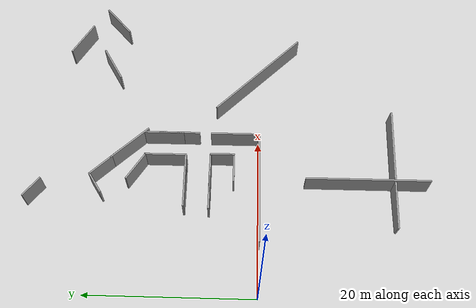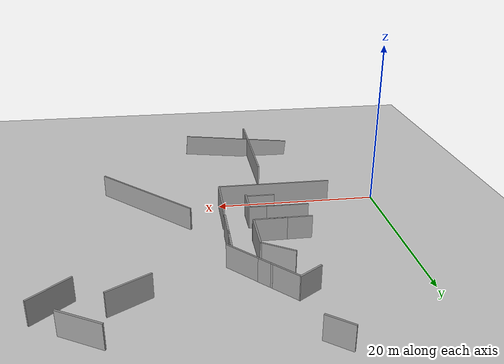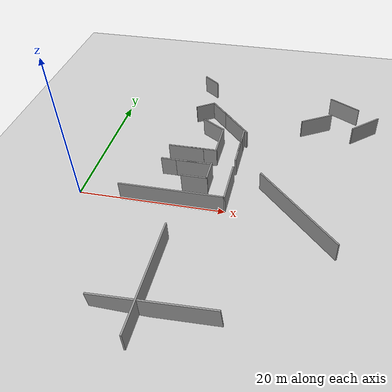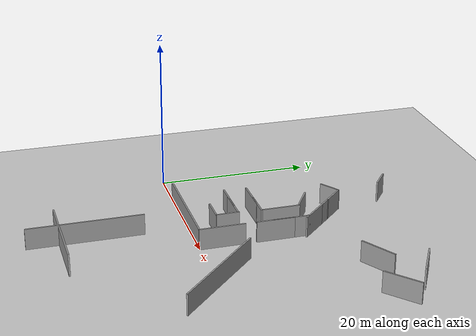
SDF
<sdf version="1.7">
 <world name="default">
  <model name="ground_plane">
   <static>1</static>
   <link name="link">
    <collision name="collision">
     <geometry><plane><normal>0 0 1</normal><size>100 100</size></plane></geometry>
     <surface>
      <contact><collide_bitmask>65535</collide_bitmask></contact>
      <friction><ode><mu>100</mu><mu2>50</mu2></ode></friction>
     </surface>
    </collision>
    <visual name="visual">
     <cast_shadows>0</cast_shadows>
     <geometry><plane><normal>0 0 1</normal><size>100 100</size></plane></geometry>
     <material>
      <script><uri>file://media/materials/scripts/gazebo.material</uri><name>Gazebo/Grey</name></script>
     </material>
    </visual>
   </link>
  </model>
  <model name="grey_wall_4">
   <link name="link">
    <pose>0 0 1.4 0 -0 0</pose>
    <inertial>
     <mass>1</mass>
     <inertia><ixx>1</ixx><ixy>0</ixy><ixz>0</ixz><iyy>1</iyy><iyz>0</iyz><izz>1</izz></inertia>
    </inertial>
    <visual name="visual">
     <cast_shadows>0</cast_shadows>
     <geometry><box><size>4 0.2 2.8</size></box></geometry>
     <material>
      <script>
       <uri>model://grey_wall/materials/scripts</uri>
       <uri>model://grey_wall/materials/textures</uri>
       <name>vrc/grey_wall</name>
      </script>
      <shader type="pixel"><normal_map>__default__</normal_map></shader>
      <ambient>1 1 1 1</ambient>
      <diffuse>1 1 1 1</diffuse>
      <specular>0 0 0 1</specular>
      <emissive>0 0 0 1</emissive>
     </material>
    </visual>
    <collision name="collision">
     <geometry><box><size>4 0.2 2.8</size></box></geometry>
     <surface>
      <friction>
       <ode><mu>1</mu><mu2>1</mu2><fdir1>0 0 0</fdir1><slip1>0</slip1><slip2>0</slip2></ode>
       <torsional>
        <coefficient>1</coefficient>
        <patch_radius>0</patch_radius>
        <surface_radius>0</surface_radius>
        <use_patch_radius>1</use_patch_radius>
        <ode><slip>0</slip></ode>
       </torsional>
      </friction>
      <bounce><restitution_coefficient>0</restitution_coefficient><threshold>1e+06</threshold></bounce>
      <contact>
       <collide_without_contact>0</collide_without_contact>
       <collide_without_contact_bitmask>1</collide_without_contact_bitmask>
       <collide_bitmask>1</collide_bitmask>
       <ode>
        <soft_cfm>0</soft_cfm>
        <soft_erp>0.2</soft_erp>
        <kp>1e+13</kp>
        <kd>1</kd>
        <max_vel>0.01</max_vel>
        <min_depth>0</min_depth>
       </ode>
       <bullet>
        <split_impulse>1</split_impulse>
        <split_impulse_penetration_threshold>-0.01</split_impulse_penetration_threshold>
        <soft_cfm>0</soft_cfm>
        <soft_erp>0.2</soft_erp>
        <kp>1e+13</kp>
        <kd>1</kd>
       </bullet>
      </contact>
     </surface>
    </collision>
   </link>
   <static>1</static>
   <pose>14.9898 8.86455 0 0 -0 0</pose>
  </model>
  <model name="grey_wall_5_clone">
   <link name="link">
    <pose>0 0 1.4 0 -0 0</pose>
    <inertial>
     <mass>1</mass>
     <inertia><ixx>1</ixx><ixy>0</ixy><ixz>0</ixz><iyy>1</iyy><iyz>0</iyz><izz>1</izz></inertia>
    </inertial>
    <visual name="visual">
     <cast_shadows>0</cast_shadows>
     <geometry><box><size>5 0.2 2.8</size></box></geometry>
     <material>
      <script>
       <uri>model://grey_wall/materials/scripts</uri>
       <uri>model://grey_wall/materials/textures</uri>
       <name>vrc/grey_wall</name>
      </script>
      <shader type="pixel"><normal_map>__default__</normal_map></shader>
      <ambient>1 1 1 1</ambient>
      <diffuse>1 1 1 1</diffuse>
      <specular>0 0 0 1</specular>
      <emissive>0 0 0 1</emissive>
     </material>
    </visual>
    <collision name="collision">
     <geometry><box><size>5 0.2 2.8</size></box></geometry>
     <surface>
      <friction>
       <ode><mu>1</mu><mu2>1</mu2><fdir1>0 0 0</fdir1><slip1>0</slip1><slip2>0</slip2></ode>
       <torsional>
        <coefficient>1</coefficient>
        <patch_radius>0</patch_radius>
        <surface_radius>0</surface_radius>
        <use_patch_radius>1</use_patch_radius>
        <ode><slip>0</slip></ode>
       </torsional>
      </friction>
      <bounce><restitution_coefficient>0</restitution_coefficient><threshold>1e+06</threshold></bounce>
      <contact>
       <collide_without_contact>0</collide_without_contact>
       <collide_without_contact_bitmask>1</collide_without_contact_bitmask>
       <collide_bitmask>1</collide_bitmask>
       <ode>
        <soft_cfm>0</soft_cfm>
        <soft_erp>0.2</soft_erp>
        <kp>1e+13</kp>
        <kd>1</kd>
        <max_vel>0.01</max_vel>
        <min_depth>0</min_depth>
       </ode>
       <bullet>
        <split_impulse>1</split_impulse>
        <split_impulse_penetration_threshold>-0.01</split_impulse_penetration_threshold>
        <soft_cfm>0</soft_cfm>
        <soft_erp>0.2</soft_erp>
        <kp>1e+13</kp>
        <kd>1</kd>
       </bullet>
      </contact>
     </surface>
    </collision>
   </link>
   <static>1</static>
   <pose>19.9534 11.7499 0 0 -0 1.57141</pose>
  </model>
  <model name="grey_wall_3.6_clone">
   <link name="link">
    <pose>0 0 1.4 0 -0 0</pose>
    <inertial>
     <mass>1</mass>
     <inertia><ixx>1</ixx><ixy>0</ixy><ixz>0</ixz><iyy>1</iyy><iyz>0</iyz><izz>1</izz></inertia>
    </inertial>
    <visual name="visual">
     <cast_shadows>0</cast_shadows>
     <geometry><box><size>3.6 0.2 2.8</size></box></geometry>
     <material>
      <script>
       <uri>model://grey_wall/materials/scripts</uri>
       <uri>model://grey_wall/materials/textures</uri>
       <name>vrc/grey_wall</name>
      </script>
      <shader type="pixel"><normal_map>__default__</normal_map></shader>
      <ambient>1 1 1 1</ambient>
      <diffuse>1 1 1 1</diffuse>
      <specular>0 0 0 1</specular>
      <emissive>0 0 0 1</emissive>
     </material>
    </visual>
    <collision name="collision">
     <geometry><box><size>3.6 0.2 2.8</size></box></geometry>
     <surface>
      <friction>
       <ode><mu>1</mu><mu2>1</mu2><fdir1>0 0 0</fdir1><slip1>0</slip1><slip2>0</slip2></ode>
       <torsional>
        <coefficient>1</coefficient>
        <patch_radius>0</patch_radius>
        <surface_radius>0</surface_radius>
        <use_patch_radius>1</use_patch_radius>
        <ode><slip>0</slip></ode>
       </torsional>
      </friction>
      <bounce><restitution_coefficient>0</restitution_coefficient><threshold>1e+06</threshold></bounce>
      <contact>
       <collide_without_contact>0</collide_without_contact>
       <collide_without_contact_bitmask>1</collide_without_contact_bitmask>
       <collide_bitmask>1</collide_bitmask>
       <ode>
        <soft_cfm>0</soft_cfm>
        <soft_erp>0.2</soft_erp>
        <kp>1e+13</kp>
        <kd>1</kd>
        <max_vel>0.01</max_vel>
        <min_depth>0</min_depth>
       </ode>
       <bullet>
        <split_impulse>1</split_impulse>
        <split_impulse_penetration_threshold>-0.01</split_impulse_penetration_threshold>
        <soft_cfm>0</soft_cfm>
        <soft_erp>0.2</soft_erp>
        <kp>1e+13</kp>
        <kd>1</kd>
       </bullet>
      </contact>
     </surface>
    </collision>
   </link>
   <static>1</static>
   <pose>15.2337 2.99966 0 0 -0 3.14101</pose>
  </model>
  <model name="grey_wall_15_clone_0_clone">
   <link name="link">
    <pose>0 0 1.4 0 -0 0</pose>
    <inertial>
     <mass>1</mass>
     <inertia><ixx>1</ixx><ixy>0</ixy><ixz>0</ixz><iyy>1</iyy><iyz>0</iyz><izz>1</izz></inertia>
    </inertial>
    <visual name="visual">
     <cast_shadows>0</cast_shadows>
     <geometry><box><size>15 0.2 2.8</size></box></geometry>
     <material>
      <script>
       <uri>model://grey_wall/materials/scripts</uri>
       <uri>model://grey_wall/materials/textures</uri>
       <name>vrc/grey_wall</name>
      </script>
      <shader type="pixel"><normal_map>__default__</normal_map></shader>
      <ambient>1 1 1 1</ambient>
      <diffuse>1 1 1 1</diffuse>
      <specular>0 0 0 1</specular>
      <emissive>0 0 0 1</emissive>
     </material>
    </visual>
    <collision name="collision">
     <geometry><box><size>15 0.2 2.8</size></box></geometry>
     <surface>
      <friction>
       <ode><mu>1</mu><mu2>1</mu2><fdir1>0 0 0</fdir1><slip1>0</slip1><slip2>0</slip2></ode>
       <torsional>
        <coefficient>1</coefficient>
        <patch_radius>0</patch_radius>
        <surface_radius>0</surface_radius>
        <use_patch_radius>1</use_patch_radius>
        <ode><slip>0</slip></ode>
       </torsional>
      </friction>
      <bounce><restitution_coefficient>0</restitution_coefficient><threshold>1e+06</threshold></bounce>
      <contact>
       <collide_without_contact>0</collide_without_contact>
       <collide_without_contact_bitmask>1</collide_without_contact_bitmask>
       <collide_bitmask>1</collide_bitmask>
       <ode>
        <soft_cfm>0</soft_cfm>
        <soft_erp>0.2</soft_erp>
        <kp>1e+13</kp>
        <kd>1</kd>
        <max_vel>0.01</max_vel>
        <min_depth>0</min_depth>
       </ode>
       <bullet>
        <split_impulse>1</split_impulse>
        <split_impulse_penetration_threshold>-0.01</split_impulse_penetration_threshold>
        <soft_cfm>0</soft_cfm>
        <soft_erp>0.2</soft_erp>
        <kp>1e+13</kp>
        <kd>1</kd>
       </bullet>
      </contact>
     </surface>
    </collision>
   </link>
   <static>1</static>
   <pose>14.0313 -13.123 0 0 -0 1.57141</pose>
  </model>
  <model name="grey_wall_5_clone_0">
   <link name="link">
    <pose>0 0 1.4 0 -0 0</pose>
    <inertial>
     <mass>1</mass>
     <inertia><ixx>1</ixx><ixy>0</ixy><ixz>0</ixz><iyy>1</iyy><iyz>0</iyz><izz>1</izz></inertia>
    </inertial>
    <visual name="visual">
     <cast_shadows>0</cast_shadows>
     <geometry><box><size>5 0.2 2.8</size></box></geometry>
     <material>
      <script>
       <uri>model://grey_wall/materials/scripts</uri>
       <uri>model://grey_wall/materials/textures</uri>
       <name>vrc/grey_wall</name>
      </script>
      <shader type="pixel"><normal_map>__default__</normal_map></shader>
      <ambient>1 1 1 1</ambient>
      <diffuse>1 1 1 1</diffuse>
      <specular>0 0 0 1</specular>
      <emissive>0 0 0 1</emissive>
     </material>
    </visual>
    <collision name="collision">
     <geometry><box><size>5 0.2 2.8</size></box></geometry>
     <surface>
      <friction>
       <ode><mu>1</mu><mu2>1</mu2><fdir1>0 0 0</fdir1><slip1>0</slip1><slip2>0</slip2></ode>
       <torsional>
        <coefficient>1</coefficient>
        <patch_radius>0</patch_radius>
        <surface_radius>0</surface_radius>
        <use_patch_radius>1</use_patch_radius>
        <ode><slip>0</slip></ode>
       </torsional>
      </friction>
      <bounce><restitution_coefficient>0</restitution_coefficient><threshold>1e+06</threshold></bounce>
      <contact>
       <collide_without_contact>0</collide_without_contact>
       <collide_without_contact_bitmask>1</collide_without_contact_bitmask>
       <collide_bitmask>1</collide_bitmask>
       <ode>
        <soft_cfm>0</soft_cfm>
        <soft_erp>0.2</soft_erp>
        <kp>1e+13</kp>
        <kd>1</kd>
        <max_vel>0.01</max_vel>
        <min_depth>0</min_depth>
       </ode>
       <bullet>
        <split_impulse>1</split_impulse>
        <split_impulse_penetration_threshold>-0.01</split_impulse_penetration_threshold>
        <soft_cfm>0</soft_cfm>
        <soft_erp>0.2</soft_erp>
        <kp>1e+13</kp>
        <kd>1</kd>
       </bullet>
      </contact>
     </surface>
    </collision>
   </link>
   <static>1</static>
   <pose>30.2296 19.1971 0 0 -0 0.529284</pose>
  </model>
  <model name="grey_wall_5_clone_1">
   <link name="link">
    <pose>0 0 1.4 0 -0 0</pose>
    <inertial>
     <mass>1</mass>
     <inertia><ixx>1</ixx><ixy>0</ixy><ixz>0</ixz><iyy>1</iyy><iyz>0</iyz><izz>1</izz></inertia>
    </inertial>
    <visual name="visual">
     <cast_shadows>0</cast_shadows>
     <geometry><box><size>5 0.2 2.8</size></box></geometry>
     <material>
      <script>
       <uri>model://grey_wall/materials/scripts</uri>
       <uri>model://grey_wall/materials/textures</uri>
       <name>vrc/grey_wall</name>
      </script>
      <shader type="pixel"><normal_map>__default__</normal_map></shader>
      <ambient>1 1 1 1</ambient>
      <diffuse>1 1 1 1</diffuse>
      <specular>0 0 0 1</specular>
      <emissive>0 0 0 1</emissive>
     </material>
    </visual>
    <collision name="collision">
     <geometry><box><size>5 0.2 2.8</size></box></geometry>
     <surface>
      <friction>
       <ode><mu>1</mu><mu2>1</mu2><fdir1>0 0 0</fdir1><slip1>0</slip1><slip2>0</slip2></ode>
       <torsional>
        <coefficient>1</coefficient>
        <patch_radius>0</patch_radius>
        <surface_radius>0</surface_radius>
        <use_patch_radius>1</use_patch_radius>
        <ode><slip>0</slip></ode>
       </torsional>
      </friction>
      <bounce><restitution_coefficient>0</restitution_coefficient><threshold>1e+06</threshold></bounce>
      <contact>
       <collide_without_contact>0</collide_without_contact>
       <collide_without_contact_bitmask>1</collide_without_contact_bitmask>
       <collide_bitmask>1</collide_bitmask>
       <ode>
        <soft_cfm>0</soft_cfm>
        <soft_erp>0.2</soft_erp>
        <kp>1e+13</kp>
        <kd>1</kd>
        <max_vel>0.01</max_vel>
        <min_depth>0</min_depth>
       </ode>
       <bullet>
        <split_impulse>1</split_impulse>
        <split_impulse_penetration_threshold>-0.01</split_impulse_penetration_threshold>
        <soft_cfm>0</soft_cfm>
        <soft_erp>0.2</soft_erp>
        <kp>1e+13</kp>
        <kd>1</kd>
       </bullet>
      </contact>
     </surface>
    </collision>
   </link>
   <static>1</static>
   <pose>34.2783 23.6671 0 0 0 -0.50895</pose>
  </model>
  <model name="grey_wall_5_clone_clone_0_clone_1">
   <link name="link">
    <pose>0 0 1.4 0 -0 0</pose>
    <inertial>
     <mass>1</mass>
     <inertia><ixx>1</ixx><ixy>0</ixy><ixz>0</ixz><iyy>1</iyy><iyz>0</iyz><izz>1</izz></inertia>
    </inertial>
    <visual name="visual">
     <cast_shadows>0</cast_shadows>
     <geometry><box><size>5 0.2 2.8</size></box></geometry>
     <material>
      <script>
       <uri>model://grey_wall/materials/scripts</uri>
       <uri>model://grey_wall/materials/textures</uri>
       <name>vrc/grey_wall</name>
      </script>
      <shader type="pixel"><normal_map>__default__</normal_map></shader>
      <ambient>1 1 1 1</ambient>
      <diffuse>1 1 1 1</diffuse>
      <specular>0 0 0 1</specular>
      <emissive>0 0 0 1</emissive>
     </material>
    </visual>
    <collision name="collision">
     <geometry><box><size>5 0.2 2.8</size></box></geometry>
     <surface>
      <friction>
       <ode><mu>1</mu><mu2>1</mu2><fdir1>0 0 0</fdir1><slip1>0</slip1><slip2>0</slip2></ode>
       <torsional>
        <coefficient>1</coefficient>
        <patch_radius>0</patch_radius>
        <surface_radius>0</surface_radius>
        <use_patch_radius>1</use_patch_radius>
        <ode><slip>0</slip></ode>
       </torsional>
      </friction>
      <bounce><restitution_coefficient>0</restitution_coefficient><threshold>1e+06</threshold></bounce>
      <contact>
       <collide_without_contact>0</collide_without_contact>
       <collide_without_contact_bitmask>1</collide_without_contact_bitmask>
       <collide_bitmask>1</collide_bitmask>
       <ode>
        <soft_cfm>0</soft_cfm>
        <soft_erp>0.2</soft_erp>
        <kp>1e+13</kp>
        <kd>1</kd>
        <max_vel>0.01</max_vel>
        <min_depth>0</min_depth>
       </ode>
       <bullet>
        <split_impulse>1</split_impulse>
        <split_impulse_penetration_threshold>-0.01</split_impulse_penetration_threshold>
        <soft_cfm>0</soft_cfm>
        <soft_erp>0.2</soft_erp>
        <kp>1e+13</kp>
        <kd>1</kd>
       </bullet>
      </contact>
     </surface>
    </collision>
   </link>
   <static>1</static>
   <pose>16.8746 11.4687 0 0 -0 1.57141</pose>
  </model>
  <model name="grey_wall_4_clone_0_clone_clone_0_clone_clone_clone_1_clone">
   <link name="link">
    <pose>0 0 1.4 0 -0 0</pose>
    <inertial>
     <mass>1</mass>
     <inertia><ixx>1</ixx><ixy>0</ixy><ixz>0</ixz><iyy>1</iyy><iyz>0</iyz><izz>1</izz></inertia>
    </inertial>
    <visual name="visual">
     <cast_shadows>0</cast_shadows>
     <geometry><box><size>4 0.2 2.8</size></box></geometry>
     <material>
      <script>
       <uri>model://grey_wall/materials/scripts</uri>
       <uri>model://grey_wall/materials/textures</uri>
       <name>vrc/grey_wall</name>
      </script>
      <shader type="pixel"><normal_map>__default__</normal_map></shader>
      <ambient>1 1 1 1</ambient>
      <diffuse>1 1 1 1</diffuse>
      <specular>0 0 0 1</specular>
      <emissive>0 0 0 1</emissive>
     </material>
    </visual>
    <collision name="collision">
     <geometry><box><size>4 0.2 2.8</size></box></geometry>
     <surface>
      <friction>
       <ode><mu>1</mu><mu2>1</mu2><fdir1>0 0 0</fdir1><slip1>0</slip1><slip2>0</slip2></ode>
       <torsional>
        <coefficient>1</coefficient>
        <patch_radius>0</patch_radius>
        <surface_radius>0</surface_radius>
        <use_patch_radius>1</use_patch_radius>
        <ode><slip>0</slip></ode>
       </torsional>
      </friction>
      <bounce><restitution_coefficient>0</restitution_coefficient><threshold>1e+06</threshold></bounce>
      <contact>
       <collide_without_contact>0</collide_without_contact>
       <collide_without_contact_bitmask>1</collide_without_contact_bitmask>
       <collide_bitmask>1</collide_bitmask>
       <ode>
        <soft_cfm>0</soft_cfm>
        <soft_erp>0.2</soft_erp>
        <kp>1e+13</kp>
        <kd>1</kd>
        <max_vel>0.01</max_vel>
        <min_depth>0</min_depth>
       </ode>
       <bullet>
        <split_impulse>1</split_impulse>
        <split_impulse_penetration_threshold>-0.01</split_impulse_penetration_threshold>
        <soft_cfm>0</soft_cfm>
        <soft_erp>0.2</soft_erp>
        <kp>1e+13</kp>
        <kd>1</kd>
       </bullet>
      </contact>
     </surface>
    </collision>
   </link>
   <static>1</static>
   <pose>15.1846 14.8427 0 0 -0 2.58708</pose>
  </model>
  <model name="grey_wall_5_clone_clone_0_clone_1_clone_clone_0">
   <link name="link">
    <pose>0 0 1.4 0 -0 0</pose>
    <inertial>
     <mass>1</mass>
     <inertia><ixx>1</ixx><ixy>0</ixy><ixz>0</ixz><iyy>1</iyy><iyz>0</iyz><izz>1</izz></inertia>
    </inertial>
    <visual name="visual">
     <cast_shadows>0</cast_shadows>
     <geometry><box><size>5 0.2 2.8</size></box></geometry>
     <material>
      <script>
       <uri>model://grey_wall/materials/scripts</uri>
       <uri>model://grey_wall/materials/textures</uri>
       <name>vrc/grey_wall</name>
      </script>
      <shader type="pixel"><normal_map>__default__</normal_map></shader>
      <ambient>1 1 1 1</ambient>
      <diffuse>1 1 1 1</diffuse>
      <specular>0 0 0 1</specular>
      <emissive>0 0 0 1</emissive>
     </material>
    </visual>
    <collision name="collision">
     <geometry><box><size>5 0.2 2.8</size></box></geometry>
     <surface>
      <friction>
       <ode><mu>1</mu><mu2>1</mu2><fdir1>0 0 0</fdir1><slip1>0</slip1><slip2>0</slip2></ode>
       <torsional>
        <coefficient>1</coefficient>
        <patch_radius>0</patch_radius>
        <surface_radius>0</surface_radius>
        <use_patch_radius>1</use_patch_radius>
        <ode><slip>0</slip></ode>
       </torsional>
      </friction>
      <bounce><restitution_coefficient>0</restitution_coefficient><threshold>1e+06</threshold></bounce>
      <contact>
       <collide_without_contact>0</collide_without_contact>
       <collide_without_contact_bitmask>1</collide_without_contact_bitmask>
       <collide_bitmask>1</collide_bitmask>
       <ode>
        <soft_cfm>0</soft_cfm>
        <soft_erp>0.2</soft_erp>
        <kp>1e+13</kp>
        <kd>1</kd>
        <max_vel>0.01</max_vel>
        <min_depth>0</min_depth>
       </ode>
       <bullet>
        <split_impulse>1</split_impulse>
        <split_impulse_penetration_threshold>-0.01</split_impulse_penetration_threshold>
        <soft_cfm>0</soft_cfm>
        <soft_erp>0.2</soft_erp>
        <kp>1e+13</kp>
        <kd>1</kd>
       </bullet>
      </contact>
     </surface>
    </collision>
   </link>
   <static>1</static>
   <pose>37.4469 19.166 0 0 -0 0.722717</pose>
  </model>
  <model name="grey_wall_6">
   <link name="link">
    <pose>0 0 1.4 0 -0 0</pose>
    <inertial>
     <mass>1</mass>
     <inertia><ixx>1</ixx><ixy>0</ixy><ixz>0</ixz><iyy>1</iyy><iyz>0</iyz><izz>1</izz></inertia>
    </inertial>
    <visual name="visual">
     <cast_shadows>0</cast_shadows>
     <geometry><box><size>6 0.2 2.8</size></box></geometry>
     <material>
      <script>
       <uri>model://grey_wall/materials/scripts</uri>
       <uri>model://grey_wall/materials/textures</uri>
       <name>vrc/grey_wall</name>
      </script>
      <shader type="pixel"><normal_map>__default__</normal_map></shader>
      <ambient>1 1 1 1</ambient>
      <diffuse>1 1 1 1</diffuse>
      <specular>0 0 0 1</specular>
      <emissive>0 0 0 1</emissive>
     </material>
    </visual>
    <collision name="collision">
     <geometry><box><size>6 0.2 2.8</size></box></geometry>
     <surface>
      <friction>
       <ode><mu>1</mu><mu2>1</mu2><fdir1>0 0 0</fdir1><slip1>0</slip1><slip2>0</slip2></ode>
       <torsional>
        <coefficient>1</coefficient>
        <patch_radius>0</patch_radius>
        <surface_radius>0</surface_radius>
        <use_patch_radius>1</use_patch_radius>
        <ode><slip>0</slip></ode>
       </torsional>
      </friction>
      <bounce><restitution_coefficient>0</restitution_coefficient><threshold>1e+06</threshold></bounce>
      <contact>
       <collide_without_contact>0</collide_without_contact>
       <collide_without_contact_bitmask>1</collide_without_contact_bitmask>
       <collide_bitmask>1</collide_bitmask>
       <ode>
        <soft_cfm>0</soft_cfm>
        <soft_erp>0.2</soft_erp>
        <kp>1e+13</kp>
        <kd>1</kd>
        <max_vel>0.01</max_vel>
        <min_depth>0</min_depth>
       </ode>
       <bullet>
        <split_impulse>1</split_impulse>
        <split_impulse_penetration_threshold>-0.01</split_impulse_penetration_threshold>
        <soft_cfm>0</soft_cfm>
        <soft_erp>0.2</soft_erp>
        <kp>1e+13</kp>
        <kd>1</kd>
       </bullet>
      </contact>
     </surface>
    </collision>
   </link>
   <static>1</static>
   <pose>18.3746 15.8446 0 0 -0 2.33668</pose>
  </model>
  <model name="grey_wall_15_clone_0_clone_0">
   <link name="link">
    <pose>0 0 1.4 0 -0 0</pose>
    <inertial>
     <mass>1</mass>
     <inertia><ixx>1</ixx><ixy>0</ixy><ixz>0</ixz><iyy>1</iyy><iyz>0</iyz><izz>1</izz></inertia>
    </inertial>
    <visual name="visual">
     <cast_shadows>0</cast_shadows>
     <geometry><box><size>15 0.2 2.8</size></box></geometry>
     <material>
      <script>
       <uri>model://grey_wall/materials/scripts</uri>
       <uri>model://grey_wall/materials/textures</uri>
       <name>vrc/grey_wall</name>
      </script>
      <shader type="pixel"><normal_map>__default__</normal_map></shader>
      <ambient>1 1 1 1</ambient>
      <diffuse>1 1 1 1</diffuse>
      <specular>0 0 0 1</specular>
      <emissive>0 0 0 1</emissive>
     </material>
    </visual>
    <collision name="collision">
     <geometry><box><size>15 0.2 2.8</size></box></geometry>
     <surface>
      <friction>
       <ode><mu>1</mu><mu2>1</mu2><fdir1>0 0 0</fdir1><slip1>0</slip1><slip2>0</slip2></ode>
       <torsional>
        <coefficient>1</coefficient>
        <patch_radius>0</patch_radius>
        <surface_radius>0</surface_radius>
        <use_patch_radius>1</use_patch_radius>
        <ode><slip>0</slip></ode>
       </torsional>
      </friction>
      <bounce><restitution_coefficient>0</restitution_coefficient><threshold>1e+06</threshold></bounce>
      <contact>
       <collide_without_contact>0</collide_without_contact>
       <collide_without_contact_bitmask>1</collide_without_contact_bitmask>
       <collide_bitmask>1</collide_bitmask>
       <ode>
        <soft_cfm>0</soft_cfm>
        <soft_erp>0.2</soft_erp>
        <kp>1e+13</kp>
        <kd>1</kd>
        <max_vel>0.01</max_vel>
        <min_depth>0</min_depth>
       </ode>
       <bullet>
        <split_impulse>1</split_impulse>
        <split_impulse_penetration_threshold>-0.01</split_impulse_penetration_threshold>
        <soft_cfm>0</soft_cfm>
        <soft_erp>0.2</soft_erp>
        <kp>1e+13</kp>
        <kd>1</kd>
       </bullet>
      </contact>
     </surface>
    </collision>
   </link>
   <static>1</static>
   <pose>15.8731 -16.4109 1e-06 -0.001637 0.091678 3.12433</pose>
  </model>
  <model name="grey_wall_6_clone_clone_clone_clone_0">
   <link name="link">
    <pose>0 0 1.4 0 -0 0</pose>
    <inertial>
     <mass>1</mass>
     <inertia><ixx>1</ixx><ixy>0</ixy><ixz>0</ixz><iyy>1</iyy><iyz>0</iyz><izz>1</izz></inertia>
    </inertial>
    <visual name="visual">
     <cast_shadows>0</cast_shadows>
     <geometry><box><size>6 0.2 2.8</size></box></geometry>
     <material>
      <script>
       <uri>model://grey_wall/materials/scripts</uri>
       <uri>model://grey_wall/materials/textures</uri>
       <name>vrc/grey_wall</name>
      </script>
      <shader type="pixel"><normal_map>__default__</normal_map></shader>
      <ambient>1 1 1 1</ambient>
      <diffuse>1 1 1 1</diffuse>
      <specular>0 0 0 1</specular>
      <emissive>0 0 0 1</emissive>
     </material>
    </visual>
    <collision name="collision">
     <geometry><box><size>6 0.2 2.8</size></box></geometry>
     <surface>
      <friction>
       <ode><mu>1</mu><mu2>1</mu2><fdir1>0 0 0</fdir1><slip1>0</slip1><slip2>0</slip2></ode>
       <torsional>
        <coefficient>1</coefficient>
        <patch_radius>0</patch_radius>
        <surface_radius>0</surface_radius>
        <use_patch_radius>1</use_patch_radius>
        <ode><slip>0</slip></ode>
       </torsional>
      </friction>
      <bounce><restitution_coefficient>0</restitution_coefficient><threshold>1e+06</threshold></bounce>
      <contact>
       <collide_without_contact>0</collide_without_contact>
       <collide_without_contact_bitmask>1</collide_without_contact_bitmask>
       <collide_bitmask>1</collide_bitmask>
       <ode>
        <soft_cfm>0</soft_cfm>
        <soft_erp>0.2</soft_erp>
        <kp>1e+13</kp>
        <kd>1</kd>
        <max_vel>0.01</max_vel>
        <min_depth>0</min_depth>
       </ode>
       <bullet>
        <split_impulse>1</split_impulse>
        <split_impulse_penetration_threshold>-0.01</split_impulse_penetration_threshold>
        <soft_cfm>0</soft_cfm>
        <soft_erp>0.2</soft_erp>
        <kp>1e+13</kp>
        <kd>1</kd>
       </bullet>
      </contact>
     </surface>
    </collision>
   </link>
   <static>1</static>
   <pose>19.935 2.89604 0 0 -0 1.57141</pose>
  </model>
  <model name="grey_wall_3_clone_clone_clone">
   <link name="link">
    <pose>0 0 1.4 0 -0 0</pose>
    <inertial>
     <mass>1</mass>
     <inertia><ixx>1</ixx><ixy>0</ixy><ixz>0</ixz><iyy>1</iyy><iyz>0</iyz><izz>1</izz></inertia>
    </inertial>
    <visual name="visual">
     <cast_shadows>0</cast_shadows>
     <geometry><box><size>3 0.2 2.8</size></box></geometry>
     <material>
      <script>
       <uri>model://grey_wall/materials/scripts</uri>
       <uri>model://grey_wall/materials/textures</uri>
       <name>vrc/grey_wall</name>
      </script>
      <shader type="pixel"><normal_map>__default__</normal_map></shader>
      <ambient>1 1 1 1</ambient>
      <diffuse>1 1 1 1</diffuse>
      <specular>0 0 0 1</specular>
      <emissive>0 0 0 1</emissive>
     </material>
    </visual>
    <collision name="collision">
     <geometry><box><size>2.96 0.2 2.8</size></box></geometry>
     <surface>
      <friction>
       <ode><mu>1</mu><mu2>1</mu2><fdir1>0 0 0</fdir1><slip1>0</slip1><slip2>0</slip2></ode>
       <torsional>
        <coefficient>1</coefficient>
        <patch_radius>0</patch_radius>
        <surface_radius>0</surface_radius>
        <use_patch_radius>1</use_patch_radius>
        <ode><slip>0</slip></ode>
       </torsional>
      </friction>
      <bounce><restitution_coefficient>0</restitution_coefficient><threshold>1e+06</threshold></bounce>
      <contact>
       <collide_without_contact>0</collide_without_contact>
       <collide_without_contact_bitmask>1</collide_without_contact_bitmask>
       <collide_bitmask>1</collide_bitmask>
       <ode>
        <soft_cfm>0</soft_cfm>
        <soft_erp>0.2</soft_erp>
        <kp>1e+13</kp>
        <kd>1</kd>
        <max_vel>0.01</max_vel>
        <min_depth>0</min_depth>
       </ode>
       <bullet>
        <split_impulse>1</split_impulse>
        <split_impulse_penetration_threshold>-0.01</split_impulse_penetration_threshold>
        <soft_cfm>0</soft_cfm>
        <soft_erp>0.2</soft_erp>
        <kp>1e+13</kp>
        <kd>1</kd>
       </bullet>
      </contact>
     </surface>
    </collision>
   </link>
   <static>1</static>
   <pose>12.8768 19.5388 0 0 -0 0.580341</pose>
  </model>
  <model name="grey_wall_15_clone_0_clone_clone_clone_0">
   <link name="link">
    <pose>0 0 1.4 0 -0 0</pose>
    <inertial>
     <mass>1</mass>
     <inertia><ixx>1</ixx><ixy>0</ixy><ixz>0</ixz><iyy>1</iyy><iyz>0</iyz><izz>1</izz></inertia>
    </inertial>
    <visual name="visual">
     <cast_shadows>0</cast_shadows>
     <geometry><box><size>15 0.2 2.8</size></box></geometry>
     <material>
      <script>
       <uri>model://grey_wall/materials/scripts</uri>
       <uri>model://grey_wall/materials/textures</uri>
       <name>vrc/grey_wall</name>
      </script>
      <shader type="pixel"><normal_map>__default__</normal_map></shader>
      <ambient>1 1 1 1</ambient>
      <diffuse>1 1 1 1</diffuse>
      <specular>0 0 0 1</specular>
      <emissive>0 0 0 1</emissive>
     </material>
    </visual>
    <collision name="collision">
     <geometry><box><size>15 0.2 2.8</size></box></geometry>
     <surface>
      <friction>
       <ode><mu>1</mu><mu2>1</mu2><fdir1>0 0 0</fdir1><slip1>0</slip1><slip2>0</slip2></ode>
       <torsional>
        <coefficient>1</coefficient>
        <patch_radius>0</patch_radius>
        <surface_radius>0</surface_radius>
        <use_patch_radius>1</use_patch_radius>
        <ode><slip>0</slip></ode>
       </torsional>
      </friction>
      <bounce><restitution_coefficient>0</restitution_coefficient><threshold>1e+06</threshold></bounce>
      <contact>
       <collide_without_contact>0</collide_without_contact>
       <collide_without_contact_bitmask>1</collide_without_contact_bitmask>
       <collide_bitmask>1</collide_bitmask>
       <ode>
        <soft_cfm>0</soft_cfm>
        <soft_erp>0.2</soft_erp>
        <kp>1e+13</kp>
        <kd>1</kd>
        <max_vel>0.01</max_vel>
        <min_depth>0</min_depth>
       </ode>
       <bullet>
        <split_impulse>1</split_impulse>
        <split_impulse_penetration_threshold>-0.01</split_impulse_penetration_threshold>
        <soft_cfm>0</soft_cfm>
        <soft_erp>0.2</soft_erp>
        <kp>1e+13</kp>
        <kd>1</kd>
       </bullet>
      </contact>
     </surface>
    </collision>
   </link>
   <static>1</static>
   <pose>29.0765 0.048129 -0 0 0 -0.778214</pose>
  </model>
  <model name="grey_wall_5_clone_2_clone_clone">
   <link name="link">
    <pose>0 0 1.4 0 -0 0</pose>
    <inertial>
     <mass>1</mass>
     <inertia><ixx>1</ixx><ixy>0</ixy><ixz>0</ixz><iyy>1</iyy><iyz>0</iyz><izz>1</izz></inertia>
    </inertial>
    <visual name="visual">
     <cast_shadows>0</cast_shadows>
     <geometry><box><size>5 0.2 2.8</size></box></geometry>
     <material>
      <script>
       <uri>model://grey_wall/materials/scripts</uri>
       <uri>model://grey_wall/materials/textures</uri>
       <name>vrc/grey_wall</name>
      </script>
      <shader type="pixel"><normal_map>__default__</normal_map></shader>
      <ambient>1 1 1 1</ambient>
      <diffuse>1 1 1 1</diffuse>
      <specular>0 0 0 1</specular>
      <emissive>0 0 0 1</emissive>
     </material>
    </visual>
    <collision name="collision">
     <geometry><box><size>5 0.2 2.8</size></box></geometry>
     <surface>
      <friction>
       <ode><mu>1</mu><mu2>1</mu2><fdir1>0 0 0</fdir1><slip1>0</slip1><slip2>0</slip2></ode>
       <torsional>
        <coefficient>1</coefficient>
        <patch_radius>0</patch_radius>
        <surface_radius>0</surface_radius>
        <use_patch_radius>1</use_patch_radius>
        <ode><slip>0</slip></ode>
       </torsional>
      </friction>
      <bounce><restitution_coefficient>0</restitution_coefficient><threshold>1e+06</threshold></bounce>
      <contact>
       <collide_without_contact>0</collide_without_contact>
       <collide_without_contact_bitmask>1</collide_without_contact_bitmask>
       <collide_bitmask>1</collide_bitmask>
       <ode>
        <soft_cfm>0</soft_cfm>
        <soft_erp>0.2</soft_erp>
        <kp>1e+13</kp>
        <kd>1</kd>
        <max_vel>0.01</max_vel>
        <min_depth>0</min_depth>
       </ode>
       <bullet>
        <split_impulse>1</split_impulse>
        <split_impulse_penetration_threshold>-0.01</split_impulse_penetration_threshold>
        <soft_cfm>0</soft_cfm>
        <soft_erp>0.2</soft_erp>
        <kp>1e+13</kp>
        <kd>1</kd>
       </bullet>
      </contact>
     </surface>
    </collision>
   </link>
   <static>1</static>
   <pose>12.3687 5.87072 0 0 0 -0.000612</pose>
  </model>
  <model name="grey_wall_5_clone_2_clone_clone_clone">
   <link name="link">
    <pose>0 0 1.4 0 -0 0</pose>
    <inertial>
     <mass>1</mass>
     <inertia><ixx>1</ixx><ixy>0</ixy><ixz>0</ixz><iyy>1</iyy><iyz>0</iyz><izz>1</izz></inertia>
    </inertial>
    <visual name="visual">
     <cast_shadows>0</cast_shadows>
     <geometry><box><size>5 0.2 2.8</size></box></geometry>
     <material>
      <script>
       <uri>model://grey_wall/materials/scripts</uri>
       <uri>model://grey_wall/materials/textures</uri>
       <name>vrc/grey_wall</name>
      </script>
      <shader type="pixel"><normal_map>__default__</normal_map></shader>
      <ambient>1 1 1 1</ambient>
      <diffuse>1 1 1 1</diffuse>
      <specular>0 0 0 1</specular>
      <emissive>0 0 0 1</emissive>
     </material>
    </visual>
    <collision name="collision">
     <geometry><box><size>5 0.2 2.8</size></box></geometry>
     <surface>
      <friction>
       <ode><mu>1</mu><mu2>1</mu2><fdir1>0 0 0</fdir1><slip1>0</slip1><slip2>0</slip2></ode>
       <torsional>
        <coefficient>1</coefficient>
        <patch_radius>0</patch_radius>
        <surface_radius>0</surface_radius>
        <use_patch_radius>1</use_patch_radius>
        <ode><slip>0</slip></ode>
       </torsional>
      </friction>
      <bounce><restitution_coefficient>0</restitution_coefficient><threshold>1e+06</threshold></bounce>
      <contact>
       <collide_without_contact>0</collide_without_contact>
       <collide_without_contact_bitmask>1</collide_without_contact_bitmask>
       <collide_bitmask>1</collide_bitmask>
       <ode>
        <soft_cfm>0</soft_cfm>
        <soft_erp>0.2</soft_erp>
        <kp>1e+13</kp>
        <kd>1</kd>
        <max_vel>0.01</max_vel>
        <min_depth>0</min_depth>
       </ode>
       <bullet>
        <split_impulse>1</split_impulse>
        <split_impulse_penetration_threshold>-0.01</split_impulse_penetration_threshold>
        <soft_cfm>0</soft_cfm>
        <soft_erp>0.2</soft_erp>
        <kp>1e+13</kp>
        <kd>1</kd>
       </bullet>
      </contact>
     </surface>
    </collision>
   </link>
   <static>1</static>
   <pose>14.4656 5.85225 0 0 0 -0.000612</pose>
  </model>
  <model name="grey_wall_5_clone_2_clone_clone_clone_0">
   <link name="link">
    <pose>0 0 1.4 0 -0 0</pose>
    <inertial>
     <mass>1</mass>
     <inertia><ixx>1</ixx><ixy>0</ixy><ixz>0</ixz><iyy>1</iyy><iyz>0</iyz><izz>1</izz></inertia>
    </inertial>
    <visual name="visual">
     <cast_shadows>0</cast_shadows>
     <geometry><box><size>5 0.2 2.8</size></box></geometry>
     <material>
      <script>
       <uri>model://grey_wall/materials/scripts</uri>
       <uri>model://grey_wall/materials/textures</uri>
       <name>vrc/grey_wall</name>
      </script>
      <shader type="pixel"><normal_map>__default__</normal_map></shader>
      <ambient>1 1 1 1</ambient>
      <diffuse>1 1 1 1</diffuse>
      <specular>0 0 0 1</specular>
      <emissive>0 0 0 1</emissive>
     </material>
    </visual>
    <collision name="collision">
     <geometry><box><size>5 0.2 2.8</size></box></geometry>
     <surface>
      <friction>
       <ode><mu>1</mu><mu2>1</mu2><fdir1>0 0 0</fdir1><slip1>0</slip1><slip2>0</slip2></ode>
       <torsional>
        <coefficient>1</coefficient>
        <patch_radius>0</patch_radius>
        <surface_radius>0</surface_radius>
        <use_patch_radius>1</use_patch_radius>
        <ode><slip>0</slip></ode>
       </torsional>
      </friction>
      <bounce><restitution_coefficient>0</restitution_coefficient><threshold>1e+06</threshold></bounce>
      <contact>
       <collide_without_contact>0</collide_without_contact>
       <collide_without_contact_bitmask>1</collide_without_contact_bitmask>
       <collide_bitmask>1</collide_bitmask>
       <ode>
        <soft_cfm>0</soft_cfm>
        <soft_erp>0.2</soft_erp>
        <kp>1e+13</kp>
        <kd>1</kd>
        <max_vel>0.01</max_vel>
        <min_depth>0</min_depth>
       </ode>
       <bullet>
        <split_impulse>1</split_impulse>
        <split_impulse_penetration_threshold>-0.01</split_impulse_penetration_threshold>
        <soft_cfm>0</soft_cfm>
        <soft_erp>0.2</soft_erp>
        <kp>1e+13</kp>
        <kd>1</kd>
       </bullet>
      </contact>
     </surface>
    </collision>
   </link>
   <static>1</static>
   <pose>12.5874 8.84866 0 0 0 -0.000612</pose>
  </model>
  <model name="grey_wall_5_clone_2_clone_clone_clone_clone">
   <link name="link">
    <pose>0 0 1.4 0 -0 0</pose>
    <inertial>
     <mass>1</mass>
     <inertia><ixx>1</ixx><ixy>0</ixy><ixz>0</ixz><iyy>1</iyy><iyz>0</iyz><izz>1</izz></inertia>
    </inertial>
    <visual name="visual">
     <cast_shadows>0</cast_shadows>
     <geometry><box><size>5 0.2 2.8</size></box></geometry>
     <material>
      <script>
       <uri>model://grey_wall/materials/scripts</uri>
       <uri>model://grey_wall/materials/textures</uri>
       <name>vrc/grey_wall</name>
      </script>
      <shader type="pixel"><normal_map>__default__</normal_map></shader>
      <ambient>1 1 1 1</ambient>
      <diffuse>1 1 1 1</diffuse>
      <specular>0 0 0 1</specular>
      <emissive>0 0 0 1</emissive>
     </material>
    </visual>
    <collision name="collision">
     <geometry><box><size>5 0.2 2.8</size></box></geometry>
     <surface>
      <friction>
       <ode><mu>1</mu><mu2>1</mu2><fdir1>0 0 0</fdir1><slip1>0</slip1><slip2>0</slip2></ode>
       <torsional>
        <coefficient>1</coefficient>
        <patch_radius>0</patch_radius>
        <surface_radius>0</surface_radius>
        <use_patch_radius>1</use_patch_radius>
        <ode><slip>0</slip></ode>
       </torsional>
      </friction>
      <bounce><restitution_coefficient>0</restitution_coefficient><threshold>1e+06</threshold></bounce>
      <contact>
       <collide_without_contact>0</collide_without_contact>
       <collide_without_contact_bitmask>1</collide_without_contact_bitmask>
       <collide_bitmask>1</collide_bitmask>
       <ode>
        <soft_cfm>0</soft_cfm>
        <soft_erp>0.2</soft_erp>
        <kp>1e+13</kp>
        <kd>1</kd>
        <max_vel>0.01</max_vel>
        <min_depth>0</min_depth>
       </ode>
       <bullet>
        <split_impulse>1</split_impulse>
        <split_impulse_penetration_threshold>-0.01</split_impulse_penetration_threshold>
        <soft_cfm>0</soft_cfm>
        <soft_erp>0.2</soft_erp>
        <kp>1e+13</kp>
        <kd>1</kd>
       </bullet>
      </contact>
     </surface>
    </collision>
   </link>
   <static>1</static>
   <pose>15.8155 18.4939 0 0 0 -0.796156</pose>
  </model>
  <model name="grey_wall_15_clone_0_clone_clone_clone">
   <link name="link">
    <pose>0 0 1.4 0 -0 0</pose>
    <inertial>
     <mass>1</mass>
     <inertia><ixx>1</ixx><ixy>0</ixy><ixz>0</ixz><iyy>1</iyy><iyz>0</iyz><izz>1</izz></inertia>
    </inertial>
    <visual name="visual">
     <cast_shadows>0</cast_shadows>
     <geometry><box><size>14 0.2 2.8</size></box></geometry>
     <material>
      <script>
       <uri>model://grey_wall/materials/scripts</uri>
       <uri>model://grey_wall/materials/textures</uri>
       <name>vrc/grey_wall</name>
      </script>
      <shader type="pixel"><normal_map>__default__</normal_map></shader>
      <ambient>1 1 1 1</ambient>
      <diffuse>1 1 1 1</diffuse>
      <specular>0 0 0 1</specular>
      <emissive>0 0 0 1</emissive>
     </material>
    </visual>
    <collision name="collision">
     <geometry><box><size>14 0.2 2.8</size></box></geometry>
     <surface>
      <friction>
       <ode><mu>1</mu><mu2>1</mu2><fdir1>0 0 0</fdir1><slip1>0</slip1><slip2>0</slip2></ode>
       <torsional>
        <coefficient>1</coefficient>
        <patch_radius>0</patch_radius>
        <surface_radius>0</surface_radius>
        <use_patch_radius>1</use_patch_radius>
        <ode><slip>0</slip></ode>
       </torsional>
      </friction>
      <bounce><restitution_coefficient>0</restitution_coefficient><threshold>1e+06</threshold></bounce>
      <contact>
       <collide_without_contact>0</collide_without_contact>
       <collide_without_contact_bitmask>1</collide_without_contact_bitmask>
       <collide_bitmask>1</collide_bitmask>
       <ode>
        <soft_cfm>0</soft_cfm>
        <soft_erp>0.2</soft_erp>
        <kp>1e+13</kp>
        <kd>1</kd>
        <max_vel>0.01</max_vel>
        <min_depth>0</min_depth>
       </ode>
       <bullet>
        <split_impulse>1</split_impulse>
        <split_impulse_penetration_threshold>-0.01</split_impulse_penetration_threshold>
        <soft_cfm>0</soft_cfm>
        <soft_erp>0.2</soft_erp>
        <kp>1e+13</kp>
        <kd>1</kd>
       </bullet>
      </contact>
     </surface>
    </collision>
   </link>
   <static>1</static>
   <pose>12.8598 -0.062177 0 0 -0 0.001488</pose>
  </model>
  <model name="grey_wall_5_clone_clone_0_clone_1_clone_clone">
   <link name="link">
    <pose>0 0 1.4 0 -0 0</pose>
    <inertial>
     <mass>1</mass>
     <inertia><ixx>1</ixx><ixy>0</ixy><ixz>0</ixz><iyy>1</iyy><iyz>0</iyz><izz>1</izz></inertia>
    </inertial>
    <visual name="visual">
     <cast_shadows>0</cast_shadows>
     <geometry><box><size>3 0.2 2.8</size></box></geometry>
     <material>
      <script>
       <uri>model://grey_wall/materials/scripts</uri>
       <uri>model://grey_wall/materials/textures</uri>
       <name>vrc/grey_wall</name>
      </script>
      <shader type="pixel"><normal_map>__default__</normal_map></shader>
      <ambient>1 1 1 1</ambient>
      <diffuse>1 1 1 1</diffuse>
      <specular>0 0 0 1</specular>
      <emissive>0 0 0 1</emissive>
     </material>
    </visual>
    <collision name="collision">
     <geometry><box><size>3 0.2 2.8</size></box></geometry>
     <surface>
      <friction>
       <ode><mu>1</mu><mu2>1</mu2><fdir1>0 0 0</fdir1><slip1>0</slip1><slip2>0</slip2></ode>
       <torsional>
        <coefficient>1</coefficient>
        <patch_radius>0</patch_radius>
        <surface_radius>0</surface_radius>
        <use_patch_radius>1</use_patch_radius>
        <ode><slip>0</slip></ode>
       </torsional>
      </friction>
      <bounce><restitution_coefficient>0</restitution_coefficient><threshold>1e+06</threshold></bounce>
      <contact>
       <collide_without_contact>0</collide_without_contact>
       <collide_without_contact_bitmask>1</collide_without_contact_bitmask>
       <collide_bitmask>1</collide_bitmask>
       <ode>
        <soft_cfm>0</soft_cfm>
        <soft_erp>0.2</soft_erp>
        <kp>1e+13</kp>
        <kd>1</kd>
        <max_vel>0.01</max_vel>
        <min_depth>0</min_depth>
       </ode>
       <bullet>
        <split_impulse>1</split_impulse>
        <split_impulse_penetration_threshold>-0.01</split_impulse_penetration_threshold>
        <soft_cfm>0</soft_cfm>
        <soft_erp>0.2</soft_erp>
        <kp>1e+13</kp>
        <kd>1</kd>
       </bullet>
      </contact>
     </surface>
    </collision>
   </link>
   <static>1</static>
   <pose>12.1499 27.006 0 0 0 -0.648953</pose>
  </model>
  <model name="grey_wall_2_clone">
   <link name="link">
    <pose>0 0 1.4 0 -0 0</pose>
    <inertial>
     <mass>1</mass>
     <inertia><ixx>1</ixx><ixy>0</ixy><ixz>0</ixz><iyy>1</iyy><iyz>0</iyz><izz>1</izz></inertia>
    </inertial>
    <visual name="visual">
     <cast_shadows>0</cast_shadows>
     <geometry><box><size>3 0.2 2.8</size></box></geometry>
     <material>
      <script>
       <uri>model://grey_wall/materials/scripts</uri>
       <uri>model://grey_wall/materials/textures</uri>
       <name>vrc/grey_wall</name>
      </script>
      <shader type="pixel"><normal_map>__default__</normal_map></shader>
      <ambient>1 1 1 1</ambient>
      <diffuse>1 1 1 1</diffuse>
      <specular>0 0 0 1</specular>
      <emissive>0 0 0 1</emissive>
     </material>
    </visual>
    <collision name="collision">
     <geometry><box><size>3 0.2 2.8</size></box></geometry>
     <surface>
      <friction>
       <ode><mu>1</mu><mu2>1</mu2><fdir1>0 0 0</fdir1><slip1>0</slip1><slip2>0</slip2></ode>
       <torsional>
        <coefficient>1</coefficient>
        <patch_radius>0</patch_radius>
        <surface_radius>0</surface_radius>
        <use_patch_radius>1</use_patch_radius>
        <ode><slip>0</slip></ode>
       </torsional>
      </friction>
      <bounce><restitution_coefficient>0</restitution_coefficient><threshold>1e+06</threshold></bounce>
      <contact>
       <collide_without_contact>0</collide_without_contact>
       <collide_without_contact_bitmask>1</collide_without_contact_bitmask>
       <collide_bitmask>1</collide_bitmask>
       <ode>
        <soft_cfm>0</soft_cfm>
        <soft_erp>0.2</soft_erp>
        <kp>1e+13</kp>
        <kd>1</kd>
        <max_vel>0.01</max_vel>
        <min_depth>0</min_depth>
       </ode>
       <bullet>
        <split_impulse>1</split_impulse>
        <split_impulse_penetration_threshold>-0.01</split_impulse_penetration_threshold>
        <soft_cfm>0</soft_cfm>
        <soft_erp>0.2</soft_erp>
        <kp>1e+13</kp>
        <kd>1</kd>
       </bullet>
      </contact>
     </surface>
    </collision>
   </link>
   <static>1</static>
   <pose>16.9557 4.42322 0.16865 0 0 -1.56489</pose>
  </model>
  <model name="grey_wall_5_clone_clone_0">
   <link name="link">
    <pose>0 0 1.4 0 -0 0</pose>
    <inertial>
     <mass>1</mass>
     <inertia><ixx>1</ixx><ixy>0</ixy><ixz>0</ixz><iyy>1</iyy><iyz>0</iyz><izz>1</izz></inertia>
    </inertial>
    <visual name="visual">
     <cast_shadows>0</cast_shadows>
     <geometry><box><size>5 0.2 2.8</size></box></geometry>
     <material>
      <script>
       <uri>model://grey_wall/materials/scripts</uri>
       <uri>model://grey_wall/materials/textures</uri>
       <name>vrc/grey_wall</name>
      </script>
      <shader type="pixel"><normal_map>__default__</normal_map></shader>
      <ambient>1 1 1 1</ambient>
      <diffuse>1 1 1 1</diffuse>
      <specular>0 0 0 1</specular>
      <emissive>0 0 0 1</emissive>
     </material>
    </visual>
    <collision name="collision">
     <geometry><box><size>5 0.2 2.8</size></box></geometry>
     <surface>
      <friction>
       <ode><mu>1</mu><mu2>1</mu2><fdir1>0 0 0</fdir1><slip1>0</slip1><slip2>0</slip2></ode>
       <torsional>
        <coefficient>1</coefficient>
        <patch_radius>0</patch_radius>
        <surface_radius>0</surface_radius>
        <use_patch_radius>1</use_patch_radius>
        <ode><slip>0</slip></ode>
       </torsional>
      </friction>
      <bounce><restitution_coefficient>0</restitution_coefficient><threshold>1e+06</threshold></bounce>
      <contact>
       <collide_without_contact>0</collide_without_contact>
       <collide_without_contact_bitmask>1</collide_without_contact_bitmask>
       <collide_bitmask>1</collide_bitmask>
       <ode>
        <soft_cfm>0</soft_cfm>
        <soft_erp>0.2</soft_erp>
        <kp>1e+13</kp>
        <kd>1</kd>
        <max_vel>0.01</max_vel>
        <min_depth>0</min_depth>
       </ode>
       <bullet>
        <split_impulse>1</split_impulse>
        <split_impulse_penetration_threshold>-0.01</split_impulse_penetration_threshold>
        <soft_cfm>0</soft_cfm>
        <soft_erp>0.2</soft_erp>
        <kp>1e+13</kp>
        <kd>1</kd>
       </bullet>
      </contact>
     </surface>
    </collision>
   </link>
   <static>1</static>
   <pose>19.9586 9.77281 0 0 -0 1.57141</pose>
  </model>
 </world>
</sdf>
